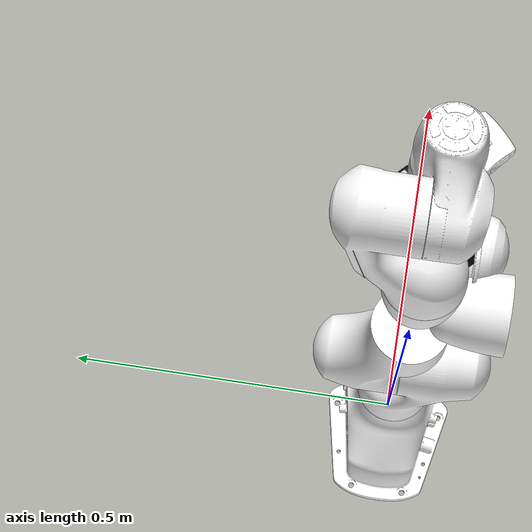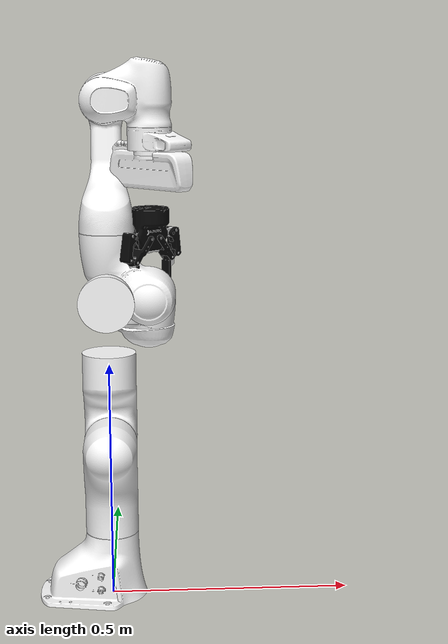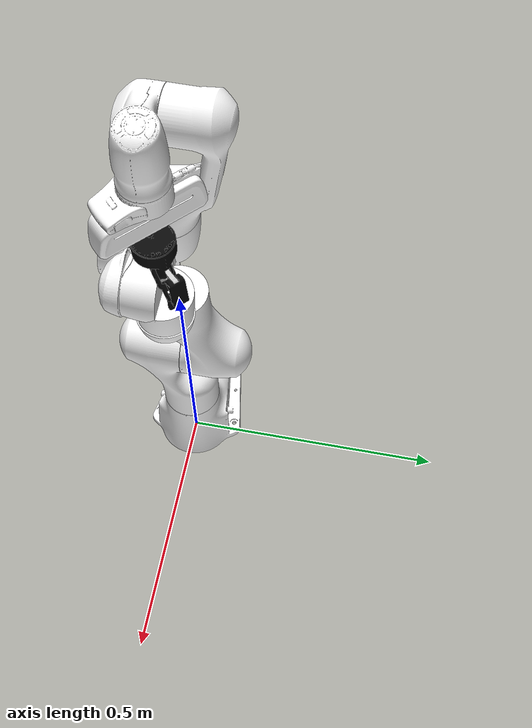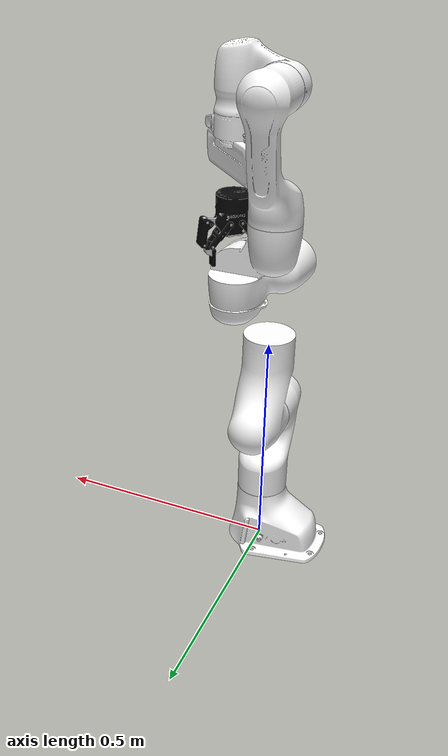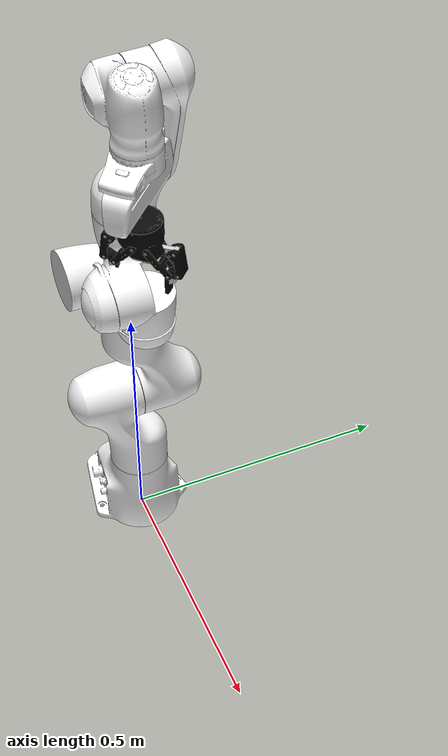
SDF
<?xml version="1.0"?>
<sdf version="1.11">
    <model name="Panda2">
        <!-- Fix To World -->
        <joint name="panda2_joint_world" type="fixed">
            <parent>world</parent>
            <child>panda2_link0</child>
        </joint>
        <!-- Arm Links -->
        <link name="panda2_link0">
            <visual name="panda2_link0_visual">
                <geometry>
                    <mesh>
                        <uri>model://panda/meshes/visual/link0.dae</uri>
                    </mesh>
                </geometry>
                <material>
                    <diffuse>1.0 1.0 1.0</diffuse>
                    <specular>1.0 1.0 1.0</specular>
                    <pbr>
                        <metal>
                            <albedo_map>model://panda/materials/textures/link0_link0_BaseColor.png</albedo_map>
                            <normal_map>model://panda/materials/textures/link0_link0_Normal.png</normal_map>
                            <metalness_map>model://panda/materials/textures/link0_link0_Metallic.png</metalness_map>
                            <roughness_map>model://panda/materials/textures/link0_link0_Roughness.png</roughness_map>
                            <environment_map>https://fuel.ignitionrobotics.org/1.0/openrobotics/models/Reflective table/1/files/materials/textures/DepotEnvMap.dds</environment_map>
                        </metal>
                    </pbr>
                </material>
            </visual>
            <collision name="panda2_link0_collision">
                <geometry>
                    <mesh>
                        <uri>model://panda/meshes/collision/link0.stl</uri>
                    </mesh>
                </geometry>
                <surface>
                    <friction>
                        <ode>
                            <mu>1.05</mu>
                            <mu2>1.05</mu2>
                        </ode>
                    </friction>
                </surface>
            </collision>
            <inertial>
                <pose>-0.025566 -2.87883e-05 0.057332 0 0 0</pose>
                <mass>2.814271300104062</mass>
                <inertia>
                    <ixx>0.0075390636364814695</ixx>
                    <iyy>0.010508017427382959</iyy>
                    <izz>0.009864933638708275</izz>
                    <ixy>-1.5053124574783335e-05</ixy>
                    <ixz>-0.0012144328835738973</ixz>
                    <iyz>1.0434803501032979e-05</iyz>
                </inertia>
            </inertial>
        </link>
        <link name="panda2_link1">
            <pose relative_to="panda2_joint1">0 0 0 0 0 0</pose>
            <visual name="panda2_link1_visual">
                <geometry>
                    <mesh>
                        <uri>model://panda/meshes/visual/link1.dae</uri>
                    </mesh>
                </geometry>
                <material>
                    <diffuse>1.0 1.0 1.0</diffuse>
                    <specular>1.0 1.0 1.0</specular>
                    <pbr>
                        <metal>
                            <albedo_map>model://panda/materials/textures/link1_link1_BaseColor.png</albedo_map>
                            <normal_map>model://panda/materials/textures/link1_link1_Normal.png</normal_map>
                            <roughness_map>model://panda/materials/textures/link1_link1_Roughness.png</roughness_map>
                            <environment_map>https://fuel.ignitionrobotics.org/1.0/openrobotics/models/Reflective table/1/files/materials/textures/DepotEnvMap.dds</environment_map>
                            <metalness>0.1</metalness>
                        </metal>
                    </pbr>
                </material>
            </visual>
            <collision name="panda2_link1_collision">
                <geometry>
                    <mesh>
                        <uri>model://panda/meshes/collision/link1.stl</uri>
                    </mesh>
                </geometry>
                <surface>
                    <friction>
                        <ode>
                            <mu>1.05</mu>
                            <mu2>1.05</mu2>
                        </ode>
                    </friction>
                </surface>
            </collision>
            <inertial>
                <pose>-3.72212e-09 -0.0324958 -0.0675818 0 0 0</pose>
                <mass>2.6433170427227215</mass>
                <inertia>
                    <ixx>0.017405076982879724</ixx>
                    <iyy>0.015352077935781732</iyy>
                    <izz>0.005987891663073857</izz>
                    <ixy>-8.687986369621078e-09</ixy>
                    <ixz>-1.6277819062920423e-08</ixz>
                    <iyz>0.004510855959102245</iyz>
                </inertia>
            </inertial>
        </link>
        <link name="panda2_link2">
            <pose relative_to="panda2_joint2">0 0 0 0 0 0</pose>
            <visual name="panda2_link2_visual">
                <geometry>
                    <mesh>
                        <uri>model://panda/meshes/visual/link2.dae</uri>
                    </mesh>
                </geometry>
                <material>
                    <diffuse>1.0 1.0 1.0</diffuse>
                    <specular>1.0 1.0 1.0</specular>
                    <pbr>
                        <metal>
                            <albedo_map>model://panda/materials/textures/link2_link2_BaseColor.png</albedo_map>
                            <normal_map>model://panda/materials/textures/link2_link2_Normal.png</normal_map>
                            <roughness_map>model://panda/materials/textures/link2_link2_Roughness.png</roughness_map>
                            <environment_map>https://fuel.ignitionrobotics.org/1.0/openrobotics/models/Reflective table/1/files/materials/textures/DepotEnvMap.dds</environment_map>
                            <metalness>0.1</metalness>
                        </metal>
                    </pbr>
                </material>
            </visual>
            <collision name="panda2_link2_collision">
                <geometry>
                    <mesh>
                        <uri>model://panda/meshes/collision/link2.stl</uri>
                    </mesh>
                </geometry>
                <surface>
                    <friction>
                        <ode>
                            <mu>1.05</mu>
                            <mu2>1.05</mu2>
                        </ode>
                    </friction>
                </surface>
            </collision>
            <inertial>
                <pose>3.17833e-07 -0.06861 0.0322285 0 0 0</pose>
                <mass>2.6652755331661186</mass>
                <inertia>
                    <ixx>0.01778694005635383</ixx>
                    <iyy>0.006044133867952844</iyy>
                    <izz>0.01571095500455695</izz>
                    <ixy>8.70635625879119e-08</ixy>
                    <ixz>3.752072058394008e-08</ixz>
                    <iyz>-0.004599490295490376</iyz>
                </inertia>
            </inertial>
        </link>
        <link name="panda2_link3">
            <pose relative_to="panda2_joint3">0 0 0 0 0 0</pose>
            <visual name="panda2_link3_visual">
                <geometry>
                    <mesh>
                        <uri>model://panda/meshes/visual/link3.dae</uri>
                    </mesh>
                </geometry>
                <material>
                    <diffuse>1.0 1.0 1.0</diffuse>
                    <specular>1.0 1.0 1.0</specular>
                    <pbr>
                        <metal>
                            <albedo_map>model://panda/materials/textures/link3_link3_BaseColor.png</albedo_map>
                            <normal_map>model://panda/materials/textures/link3_link3_Normal.png</normal_map>
                            <roughness_map>model://panda/materials/textures/link3_link3_Roughness.png</roughness_map>
                            <environment_map>https://fuel.ignitionrobotics.org/1.0/openrobotics/models/Reflective table/1/files/materials/textures/DepotEnvMap.dds</environment_map>
                            <metalness>0.1</metalness>
                        </metal>
                    </pbr>
                </material>
            </visual>
            <collision name="panda2_link3_collision">
                <geometry>
                    <mesh>
                        <uri>model://panda/meshes/collision/link3.stl</uri>
                    </mesh>
                </geometry>
                <surface>
                    <friction>
                        <ode>
                            <mu>1.05</mu>
                            <mu2>1.05</mu2>
                        </ode>
                    </friction>
                </surface>
            </collision>
            <inertial>
                <pose>0.0469893 0.0316374 -0.031704 0 0 0</pose>
                <mass>2.3293714829045733</mass>
                <inertia>
                    <ixx>0.0075496764161139766</ixx>
                    <iyy>0.009680676080191398</iyy>
                    <izz>0.007944557422008086</izz>
                    <ixy>-0.0024320464513492225</ixy>
                    <ixz>-0.003250815048103007</ixz>
                    <iyz>-0.0021316282421730694</iyz>
                </inertia>
            </inertial>
        </link>
        <link name="panda2_link4">
            <pose relative_to="panda2_joint4">0 0 0 0 0 0</pose>
            <visual name="panda2_link4_visual">
                <geometry>
                    <mesh>
                        <uri>model://panda/meshes/visual/link4.dae</uri>
                    </mesh>
                </geometry>
                <material>
                    <diffuse>1.0 1.0 1.0</diffuse>
                    <specular>1.0 1.0 1.0</specular>
                    <pbr>
                        <metal>
                            <albedo_map>model://panda/materials/textures/link4_link4_BaseColor.png</albedo_map>
                            <normal_map>model://panda/materials/textures/link4_link4_Normal.png</normal_map>
                            <roughness_map>model://panda/materials/textures/link4_link4_Roughness.png</roughness_map>
                            <environment_map>https://fuel.ignitionrobotics.org/1.0/openrobotics/models/Reflective table/1/files/materials/textures/DepotEnvMap.dds</environment_map>
                            <metalness>0.1</metalness>
                        </metal>
                    </pbr>
                </material>
            </visual>
            <collision name="panda2_link4_collision">
                <geometry>
                    <mesh>
                        <uri>model://panda/meshes/collision/link4.stl</uri>
                    </mesh>
                </geometry>
                <surface>
                    <friction>
                        <ode>
                            <mu>1.05</mu>
                            <mu2>1.05</mu2>
                        </ode>
                    </friction>
                </surface>
            </collision>
            <inertial>
                <pose>-0.0360505 0.0337069 0.0319019 0 0 0</pose>
                <mass>2.3104763646281508</mass>
                <inertia>
                    <ixx>0.007764568814864828</ixx>
                    <iyy>0.008015776929980149</iyy>
                    <izz>0.009955882308071066</izz>
                    <ixy>0.003371475204045935</ixy>
                    <ixz>-0.002343621113168248</ixz>
                    <iyz>0.0022917526161470624</iyz>
                </inertia>
            </inertial>
        </link>
        <link name="panda2_link5">
            <pose relative_to="panda2_joint5">0 0 0 0 0 0</pose>
            <visual name="panda2_link5_visual">
                <geometry>
                    <mesh>
                        <uri>model://panda/meshes/visual/link5.dae</uri>
                    </mesh>
                </geometry>
                <material>
                    <diffuse>1.0 1.0 1.0</diffuse>
                    <specular>1.0 1.0 1.0</specular>
                    <pbr>
                        <metal>
                            <albedo_map>model://panda/materials/textures/link5_link5_BaseColor.png</albedo_map>
                            <normal_map>model://panda/materials/textures/link5_link5_Normal.png</normal_map>
                            <roughness_map>model://panda/materials/textures/link5_link5_Roughness.png</roughness_map>
                            <environment_map>https://fuel.ignitionrobotics.org/1.0/openrobotics/models/Reflective table/1/files/materials/textures/DepotEnvMap.dds</environment_map>
                            <metalness>0.1</metalness>
                        </metal>
                    </pbr>
                </material>
            </visual>
            <collision name="panda2_link5_collision">
                <geometry>
                    <mesh>
                        <uri>model://panda/meshes/collision/link5.stl</uri>
                    </mesh>
                </geometry>
                <surface>
                    <friction>
                        <ode>
                            <mu>1.05</mu>
                            <mu2>1.05</mu2>
                        </ode>
                    </friction>
                </surface>
            </collision>
            <inertial>
                <pose>-6.12525e-06 0.0610427 -0.104176 0 0 0</pose>
                <mass>2.6226426154892004</mass>
                <inertia>
                    <ixx>0.029070538014399377</ixx>
                    <iyy>0.027638529986528795</iyy>
                    <izz>0.004251111234400737</izz>
                    <ixy>6.208738268725568e-07</ixy>
                    <ixz>-1.0059151925023392e-05</ixz>
                    <iyz>-0.007424306477850814</iyz>
                </inertia>
            </inertial>
        </link>
        <link name="panda2_link6">
            <pose relative_to="panda2_joint6">0 0 0 0 0 0</pose>
            <visual name="panda2_link6_visual">
                <geometry>
                    <mesh>
                        <uri>model://panda/meshes/visual/link6.dae</uri>
                    </mesh>
                </geometry>
                <material>
                    <diffuse>1.0 1.0 1.0</diffuse>
                    <specular>1.0 1.0 1.0</specular>
                    <pbr>
                        <metal>
                            <albedo_map>model://panda/materials/textures/link6_link6_BaseColor.png</albedo_map>
                            <normal_map>model://panda/materials/textures/link6_link6_Normal.png</normal_map>
                            <roughness_map>model://panda/materials/textures/link6_link6_Roughness.png</roughness_map>
                            <environment_map>https://fuel.ignitionrobotics.org/1.0/openrobotics/models/Reflective table/1/files/materials/textures/DepotEnvMap.dds</environment_map>
                            <metalness>0.1</metalness>
                        </metal>
                    </pbr>
                </material>
            </visual>
            <collision name="panda2_link6_collision">
                <geometry>
                    <mesh>
                        <uri>model://panda/meshes/collision/link6.stl</uri>
                    </mesh>
                </geometry>
                <surface>
                    <friction>
                        <ode>
                            <mu>1.05</mu>
                            <mu2>1.05</mu2>
                        </ode>
                    </friction>
                </surface>
            </collision>
            <inertial>
                <pose>0.051051 0.00910797 0.0106343 0 0 0</pose>
                <mass>1.5025804886626795</mass>
                <inertia>
                    <ixx>0.002940555801469018</ixx>
                    <iyy>0.00392105201248677</iyy>
                    <izz>0.0054115603870960195</izz>
                    <ixy>-0.00042391108351381507</ixy>
                    <ixz>0.000610007735338717</ixz>
                    <iyz>0.00012647545430836214</iyz>
                </inertia>
            </inertial>
        </link>
        <link name="panda2_link7">
            <pose relative_to="panda2_joint7">0 0 0 0 0 0</pose>
            <visual name="panda2_link7_visual">
                <geometry>
                    <mesh>
                        <uri>model://panda/meshes/visual/link7.dae</uri>
                    </mesh>
                </geometry>
                <material>
                    <diffuse>1.0 1.0 1.0</diffuse>
                    <specular>1.0 1.0 1.0</specular>
                    <pbr>
                        <metal>
                            <albedo_map>model://panda/materials/textures/link7_link7_BaseColor.png</albedo_map>
                            <normal_map>model://panda/materials/textures/link7_link7_Normal.png</normal_map>
                            <metalness_map>model://panda/materials/textures/link7_link7_Metallic.png</metalness_map>
                            <roughness_map>model://panda/materials/textures/link7_link7_Roughness.png</roughness_map>
                            <environment_map>https://fuel.ignitionrobotics.org/1.0/openrobotics/models/Reflective table/1/files/materials/textures/DepotEnvMap.dds</environment_map>
                        </metal>
                    </pbr>
                </material>
            </visual>
            <collision name="panda2_link7_collision">
                <geometry>
                    <mesh>
                        <uri>model://panda/meshes/collision/link7.stl</uri>
                    </mesh>
                </geometry>
                <surface>
                    <friction>
                        <ode>
                            <mu>1.05</mu>
                            <mu2>1.05</mu2>
                        </ode>
                    </friction>
                </surface>
            </collision>
            <inertial>
                <pose>0.0109695 0.0107965 0.0650412 0 0 0</pose>
                <mass>0.5237668134788256</mass>
                <inertia>
                    <ixx>0.0008621467959726535</ixx>
                    <iyy>0.0008613100184801048</iyy>
                    <izz>0.0006961139396618219</izz>
                    <ixy>-0.00011871071570425467</ixy>
                    <ixz>3.866602604509339e-05</ixz>
                    <iyz>-9.057841649422724e-05</iyz>
                </inertia>
            </inertial>
        </link>
        <!-- Arm Joints -->
        <joint name="panda2_joint1" type="revolute">
            <pose relative_to="panda2_link0">0 0 0.333 0 0 0</pose>
            <parent>panda2_link0</parent>
            <child>panda2_link1</child>
            <axis>
                <xyz>0 0 1</xyz>
                <limit>
                    <effort>87</effort>
                    <lower>-2.897246558310587</lower>
                    <upper>2.897246558310587</upper>
                    <velocity>2.617993877991494</velocity>
                </limit>
                <dynamics>
                    <spring_reference>0</spring_reference>
                    <spring_stiffness>0</spring_stiffness>
                    <damping>21.75</damping>
                    <friction>3.48</friction>
                </dynamics>
            </axis>
        </joint>
        <joint name="panda2_joint2" type="revolute">
            <pose relative_to="panda2_link1">0 0 0 -1.570796326794897 0 0</pose>
            <parent>panda2_link1</parent>
            <child>panda2_link2</child>
            <axis>
                <xyz>0 0 1</xyz>
                <limit>
                    <effort>87</effort>
                    <lower>-1.762782544514273</lower>
                    <upper>1.762782544514273</upper>
                    <velocity>2.617993877991494</velocity>
                </limit>
                <dynamics>
                    <spring_reference>0</spring_reference>
                    <spring_stiffness>0</spring_stiffness>
                    <damping>21.75</damping>
                    <friction>3.48</friction>
                </dynamics>
            </axis>
        </joint>
        <joint name="panda2_joint3" type="revolute">
            <pose relative_to="panda2_link2">0 -0.316 0 1.570796326794897 0 0</pose>
            <parent>panda2_link2</parent>
            <child>panda2_link3</child>
            <axis>
                <xyz>0 0 1</xyz>
                <limit>
                    <effort>87</effort>
                    <lower>-2.897246558310587</lower>
                    <upper>2.897246558310587</upper>
                    <velocity>2.617993877991494</velocity>
                </limit>
                <dynamics>
                    <spring_reference>0</spring_reference>
                    <spring_stiffness>0</spring_stiffness>
                    <damping>21.75</damping>
                    <friction>3.48</friction>
                </dynamics>
            </axis>
        </joint>
        <joint name="panda2_joint4" type="revolute">
            <pose relative_to="panda2_link3">0.0825 0 0 1.570796326794897 0 0</pose>
            <parent>panda2_link3</parent>
            <child>panda2_link4</child>
            <axis>
                <xyz>0 0 1</xyz>
                <limit>
                    <effort>87</effort>
                    <lower>-3.07177948351002</lower>
                    <upper>-0.06981317007977318</upper>
                    <velocity>2.617993877991494</velocity>
                </limit>
                <dynamics>
                    <spring_reference>0</spring_reference>
                    <spring_stiffness>0</spring_stiffness>
                    <damping>21.75</damping>
                    <friction>3.48</friction>
                </dynamics>
            </axis>
        </joint>
        <joint name="panda2_joint5" type="revolute">
            <pose relative_to="panda2_link4">-0.0825 0.384 0 -1.570796326794897 0 0</pose>
            <parent>panda2_link4</parent>
            <child>panda2_link5</child>
            <axis>
                <xyz>0 0 1</xyz>
                <limit>
                    <effort>12</effort>
                    <lower>-2.897246558310587</lower>
                    <upper>2.897246558310587</upper>
                    <velocity>3.141592653589793</velocity>
                </limit>
                <dynamics>
                    <spring_reference>0</spring_reference>
                    <spring_stiffness>0</spring_stiffness>
                    <damping>3.0</damping>
                    <friction>0.48</friction>
                </dynamics>
            </axis>
        </joint>
        <joint name="panda2_joint6" type="revolute">
            <pose relative_to="panda2_link5">0 0 0 1.570796326794897 0 0</pose>
            <parent>panda2_link5</parent>
            <child>panda2_link6</child>
            <axis>
                <xyz>0 0 1</xyz>
                <limit>
                    <effort>12</effort>
                    <lower>-0.0174532925199433</lower>
                    <upper>3.752457891787809</upper>
                    <velocity>3.141592653589793</velocity>
                </limit>
                <dynamics>
                    <spring_reference>0</spring_reference>
                    <spring_stiffness>0</spring_stiffness>
                    <damping>3.0</damping>
                    <friction>0.48</friction>
                </dynamics>
            </axis>
        </joint>
        <joint name="panda2_joint7" type="revolute">
            <pose relative_to="panda2_link6">0.088 0 0 1.570796326794897 0 0</pose>
            <parent>panda2_link6</parent>
            <child>panda2_link7</child>
            <axis>
                <xyz>0 0 1</xyz>
                <limit>
                    <effort>12</effort>
                    <lower>-2.897246558310587</lower>
                    <upper>2.897246558310587</upper>
                    <velocity>3.141592653589793</velocity>
                </limit>
                <dynamics>
                    <spring_reference>0</spring_reference>
                    <spring_stiffness>0</spring_stiffness>
                    <damping>3.0</damping>
                    <friction>0.48</friction>
                </dynamics>
            </axis>
        </joint>
        <!-- Arm-Hand Fixed Joint -->
        <joint name="panda2_hand_joint" type="fixed">
            <pose relative_to="panda2_link7">0 0 0.107 0 0 -0.7853981633974483</pose>
            <parent>panda2_link7</parent>
            <child>panda2_hand</child>
        </joint>
        <!-- Hand Links -->
        <link name="panda2_hand">
            <pose relative_to="panda2_hand_joint">0 0 0 0 0 0</pose>
            <visual name="panda2_hand_visual">
                <pose>0 0 0 0 0 0</pose>
                <geometry>
                    <mesh>
                        <uri>model://panda/meshes/visual/hand.dae</uri>
                    </mesh>
                </geometry>
                <material>
                    <diffuse>1.0 1.0 1.0</diffuse>
                    <specular>1.0 1.0 1.0</specular>
                    <pbr>
                        <metal>
                            <albedo_map>model://panda/materials/textures/hand_hand_BaseColor.png</albedo_map>
                            <normal_map>model://panda/materials/textures/hand_hand_Normal.png</normal_map>
                            <roughness_map>model://panda/materials/textures/hand_hand_Roughness.png</roughness_map>
                            <environment_map>https://fuel.ignitionrobotics.org/1.0/openrobotics/models/Reflective table/1/files/materials/textures/DepotEnvMap.dds</environment_map>
                            <metalness>0.1</metalness>
                        </metal>
                    </pbr>
                </material>
            </visual>
            <collision name="panda2_hand_collision">
                <pose>0 0 0 0 0 0</pose>
                <geometry>
                    <mesh>
                        <uri>model://panda/meshes/collision/hand.stl</uri>
                    </mesh>
                </geometry>
                <surface>
                    <friction>
                        <ode>
                            <mu>1.05</mu>
                            <mu2>1.05</mu2>
                        </ode>
                    </friction>
                </surface>
            </collision>
            <inertial>
                <pose>-6.7624e-06 0.00152435 0.0275912 0 0 0</pose>
                <mass>0.14060765127978503</mass>
                <inertia>
                    <ixx>0.0005365450414352072</ixx>
                    <iyy>7.70511954783727e-05</iyy>
                    <izz>0.0004938176882694914</izz>
                    <ixy>1.7911952957732454e-08</ixy>
                    <ixz>-2.320071910601251e-08</ixz>
                    <iyz>4.681149945315967e-08</iyz>
                </inertia>
            </inertial>
        </link>
        <!-- Robotiq 2F-85 Gripper Links -->
        <link name="robotiq2_85_base_link">
            <pose relative_to="robotiq2_85_base_joint">0 0 0 0 0 0</pose>
            <inertial>
                <pose>0.0 2.274e-05 0.03232288 0 0 0</pose>
                <mass>0.6632</mass>
                <inertia>
                    <ixx>5.1617816e-04</ixx><iyy>5.8802208e-04</iyy><izz>3.9462776e-04</izz>
                    <ixy>2.936e-8</ixy><ixz>0.0</ixz><iyz>-3.2296e-7</iyz>
                </inertia>
            </inertial>
            <visual name="robotiq2_85_base_link_visual">
                <geometry>
                    <mesh><uri>file:///opt/ros/jazzy/share/robotiq_description/meshes/visual/robotiq_base.dae</uri></mesh>
                </geometry>
            </visual>
            <collision name="robotiq2_85_base_link_collision">
                <geometry>
                    <mesh><uri>file:///opt/ros/jazzy/share/robotiq_description/meshes/collision/robotiq_base.stl</uri></mesh>
                </geometry>
            </collision>
        </link>

        <link name="robotiq2_85_left_knuckle_link">
            <pose relative_to="robotiq2_85_left_knuckle_joint">0 0 0 0 0 0</pose>
            <inertial>
                <pose>0.01213197 0.0002 -0.00058647 0 0 0</pose>
                <mass>0.01384773208</mass>
                <inertia>
                    <ixx>3.5232e-7</ixx><iyy>2.31944e-6</iyy><izz>2.23136e-6</izz>
                    <ixy>0.0</ixy><ixz>1.1744e-7</ixz><iyz>0.0</iyz>
                </inertia>
            </inertial>
            <visual name="visual">
                <geometry>
                    <mesh><uri>file:///opt/ros/jazzy/share/robotiq_description/meshes/visual/left_knuckle.dae</uri></mesh>
                </geometry>
            </visual>
            <collision name="collision">
                <geometry>
                    <mesh><uri>file:///opt/ros/jazzy/share/robotiq_description/meshes/collision/left_knuckle.stl</uri></mesh>
                </geometry>
            </collision>
        </link>

        <link name="robotiq2_85_right_knuckle_link">
            <pose relative_to="robotiq2_85_right_knuckle_joint">0 0 0 0 0 0</pose>
            <inertial>
                <pose>-0.01213197 0.0002 -0.00058647 0 0 0</pose>
                <mass>0.01384773208</mass>
                <inertia>
                    <ixx>3.5232e-7</ixx><iyy>2.31944e-6</iyy><izz>2.23136e-6</izz>
                    <ixy>0.0</ixy><ixz>-1.1744e-7</ixz><iyz>0.0</iyz>
                </inertia>
            </inertial>
            <visual name="visual">
                <geometry>
                    <mesh><uri>file:///opt/ros/jazzy/share/robotiq_description/meshes/visual/right_knuckle.dae</uri></mesh>
                </geometry>
            </visual>
            <collision name="collision">
                <geometry>
                    <mesh><uri>file:///opt/ros/jazzy/share/robotiq_description/meshes/collision/right_knuckle.stl</uri></mesh>
                </geometry>
            </collision>
        </link>

        <link name="robotiq2_85_left_finger_link">
            <pose relative_to="robotiq2_85_left_finger_joint">0 0 0 0 0 0</pose>
            <inertial>
                <pose>0.00346899 -0.00079447 0.01867121 0 0 0</pose>
                <mass>0.04260376752</mass>
                <inertia>
                    <ixx>1.385792e-05</ixx><iyy>1.183208e-05</iyy><izz>5.19672e-06</izz>
                    <ixy>0.0</ixy><ixz>-2.17264e-06</ixz><iyz>0.0</iyz>
                </inertia>
            </inertial>
            <visual name="visual">
                <geometry>
                    <mesh><uri>file:///opt/ros/jazzy/share/robotiq_description/meshes/visual/left_finger.dae</uri></mesh>
                </geometry>
            </visual>
            <collision name="collision">
                <geometry>
                    <mesh><uri>file:///opt/ros/jazzy/share/robotiq_description/meshes/collision/left_finger.stl</uri></mesh>
                </geometry>
            </collision>
        </link>

        <link name="robotiq2_85_right_finger_link">
            <pose relative_to="robotiq2_85_right_finger_joint">0 0 0 0 0 0</pose>
            <inertial>
                <pose>-0.00346899 -5.53e-06 0.01867121 0 0 0</pose>
                <mass>0.04260376752</mass>
                <inertia>
                    <ixx>1.385792e-05</ixx><iyy>1.183208e-05</iyy><izz>5.19672e-06</izz>
                    <ixy>0.0</ixy><ixz>2.17264e-06</ixz><iyz>0.0</iyz>
                </inertia>
            </inertial>
            <visual name="visual">
                <geometry>
                    <mesh><uri>file:///opt/ros/jazzy/share/robotiq_description/meshes/visual/right_finger.dae</uri></mesh>
                </geometry>
            </visual>
            <collision name="collision">
                <geometry>
                    <mesh><uri>file:///opt/ros/jazzy/share/robotiq_description/meshes/collision/right_finger.stl</uri></mesh>
                </geometry>
            </collision>
        </link>

        <link name="robotiq2_85_left_inner_knuckle_link">
            <pose relative_to="robotiq2_85_left_inner_knuckle_joint">0 0 0 0 0 0</pose>
            <inertial>
                <pose>0.01897699 0.00015001 0.02247101 0 0 0</pose>
                <mass>0.02969376448</mass>
                <inertia>
                    <ixx>9.57136e-06</ixx><iyy>8.69056e-06</iyy><izz>8.19144e-06</izz>
                    <ixy>0.0</ixy><ixz>-3.93424e-06</ixz><iyz>0.0</iyz>
                </inertia>
            </inertial>
            <visual name="visual">
                <geometry>
                    <mesh><uri>file:///opt/ros/jazzy/share/robotiq_description/meshes/visual/left_inner_knuckle.dae</uri></mesh>
                </geometry>
            </visual>
            <collision name="collision">
                <geometry>
                    <mesh><uri>file:///opt/ros/jazzy/share/robotiq_description/meshes/collision/left_inner_knuckle.stl</uri></mesh>
                </geometry>
            </collision>
        </link>

        <link name="robotiq2_85_right_inner_knuckle_link">
            <pose relative_to="robotiq2_85_right_inner_knuckle_joint">0 0 0 0 0 0</pose>
            <inertial>
                <pose>-0.01926824 5.001e-05 0.02222178 0 0 0</pose>
                <mass>0.02969376448</mass>
                <inertia>
                    <ixx>9.42456e-06</ixx><iyy>8.69056e-06</iyy><izz>8.33824e-06</izz>
                    <ixy>0.0</ixy><ixz>3.9636e-06</ixz><iyz>0.0</iyz>
                </inertia>
            </inertial>
            <visual name="visual">
                <geometry>
                    <mesh><uri>file:///opt/ros/jazzy/share/robotiq_description/meshes/visual/right_inner_knuckle.dae</uri></mesh>
                </geometry>
            </visual>
            <collision name="collision">
                <geometry>
                    <mesh><uri>file:///opt/ros/jazzy/share/robotiq_description/meshes/collision/right_inner_knuckle.stl</uri></mesh>
                </geometry>
            </collision>
        </link>

        <link name="robotiq2_85_left_finger_tip_link">
            <pose relative_to="robotiq2_85_left_finger_tip_joint">0 0 0 0 0 0</pose>
            <inertial>
                <pose>-0.01456706 -0.0008 0.01649701 0 0 0</pose>
                <mass>0.04268588744</mass>
                <inertia>
                    <ixx>1.048152e-05</ixx><iyy>1.197888e-05</iyy><izz>4.22784e-06</izz>
                    <ixy>0.0</ixy><ixz>3.5232e-6</ixz><iyz>0.0</iyz>
                </inertia>
            </inertial>
            <visual name="visual">
                <geometry>
                    <mesh><uri>file:///opt/ros/jazzy/share/robotiq_description/meshes/visual/left_finger_tip.dae</uri></mesh>
                </geometry>
            </visual>
            <collision name="collision">
                <geometry>
                    <mesh><uri>file:///opt/ros/jazzy/share/robotiq_description/meshes/collision/left_finger_tip.stl</uri></mesh>
                </geometry>
            </collision>
        </link>

        <link name="robotiq2_85_right_finger_tip_link">
            <pose relative_to="robotiq2_85_right_finger_tip_joint">0 0 0 0 0 0</pose>
            <inertial>
                <pose>0.01456706 5e-05 0.01649701 0 0 0</pose>
                <mass>0.04268588744</mass>
                <inertia>
                    <ixx>1.048152e-05</ixx><iyy>1.197888e-05</iyy><izz>4.22784e-06</izz>
                    <ixy>0.0</ixy><ixz>-3.5232e-06</ixz><iyz>0.0</iyz>
                </inertia>
            </inertial>
            <visual name="visual">
                <geometry>
                    <mesh><uri>file:///opt/ros/jazzy/share/robotiq_description/meshes/visual/right_finger_tip.dae</uri></mesh>
                </geometry>
            </visual>
            <collision name="collision">
                <geometry>
                    <mesh><uri>file:///opt/ros/jazzy/share/robotiq_description/meshes/collision/right_finger_tip.stl</uri></mesh>
                </geometry>
            </collision>
        </link>

        <!-- Robotiq 2F-85 Gripper Joints -->
        <joint name="robotiq2_85_base_joint" type="fixed">
            <pose relative_to="panda2_link8">0 0 0 0 0 0</pose>
            <parent>panda2_link8</parent>
            <child>robotiq2_85_base_link</child>
        </joint>

        <joint name="robotiq2_85_left_knuckle_joint" type="revolute">
            <pose relative_to="robotiq2_85_base_link">0.03060114 0.0 0.05490452 0 0 0</pose>
            <parent>robotiq2_85_base_link</parent>
            <child>robotiq2_85_left_knuckle_link</child>
            <axis>
                <xyz>0 -1 0</xyz>
                <limit><lower>0.0</lower><upper>0.8</upper><effort>50</effort><velocity>0.5</velocity></limit>
            </axis>
        </joint>

        <joint name="robotiq2_85_right_knuckle_joint" type="revolute">
            <pose relative_to="robotiq2_85_base_link">-0.03060114 0.0 0.05490452 0 0 0</pose>
            <parent>robotiq2_85_base_link</parent>
            <child>robotiq2_85_right_knuckle_link</child>
            <axis>
                <xyz>0 -1 0</xyz>
                <limit><lower>-0.8</lower><upper>0.0</upper><effort>50</effort><velocity>0.5</velocity></limit>
                <mimic joint="robotiq2_85_left_knuckle_joint">
                    <multiplier>-1</multiplier>
                    <offset>0</offset>
                    <reference>0</reference>
                </mimic>
            </axis>
        </joint>

        <joint name="robotiq2_85_left_finger_joint" type="fixed">
            <pose relative_to="robotiq2_85_left_knuckle_link">0.03152616 0.0 -0.00376347 0 0 0</pose>
            <parent>robotiq2_85_left_knuckle_link</parent>
            <child>robotiq2_85_left_finger_link</child>
        </joint>

        <joint name="robotiq2_85_right_finger_joint" type="fixed">
            <pose relative_to="robotiq2_85_right_knuckle_link">-0.03152616 0.0 -0.00376347 0 0 0</pose>
            <parent>robotiq2_85_right_knuckle_link</parent>
            <child>robotiq2_85_right_finger_link</child>
        </joint>

        <joint name="robotiq2_85_left_inner_knuckle_joint" type="revolute">
            <pose relative_to="robotiq2_85_base_link">0.0127 0.0 0.06142 0 0 0</pose>
            <parent>robotiq2_85_base_link</parent>
            <child>robotiq2_85_left_inner_knuckle_link</child>
            <axis>
                <xyz>0 -1 0</xyz>
                <limit><lower>0.0</lower><upper>0.8</upper><effort>50</effort><velocity>0.5</velocity></limit>
                <mimic joint="robotiq2_85_left_knuckle_joint">
                    <multiplier>1</multiplier>
                    <offset>0</offset>
                    <reference>0</reference>
                </mimic>
            </axis>
        </joint>

        <joint name="robotiq2_85_right_inner_knuckle_joint" type="revolute">
            <pose relative_to="robotiq2_85_base_link">-0.0127 0.0 0.06142 0 0 0</pose>
            <parent>robotiq2_85_base_link</parent>
            <child>robotiq2_85_right_inner_knuckle_link</child>
            <axis>
                <xyz>0 -1 0</xyz>
                <limit><lower>-0.8</lower><upper>0.0</upper><effort>50</effort><velocity>0.5</velocity></limit>
                <mimic joint="robotiq2_85_left_knuckle_joint">
                    <multiplier>-1</multiplier>
                    <offset>0</offset>
                    <reference>0</reference>
                </mimic>
            </axis>
        </joint>

        <joint name="robotiq2_85_left_finger_tip_joint" type="revolute">
            <pose relative_to="robotiq2_85_left_finger_link">0.00563134 0.0 0.04718515 0 0 0</pose>
            <parent>robotiq2_85_left_finger_link</parent>
            <child>robotiq2_85_left_finger_tip_link</child>
            <axis>
                <xyz>0 -1 0</xyz>
                <limit><lower>-0.8</lower><upper>0.0</upper><effort>50</effort><velocity>0.5</velocity></limit>
                <mimic joint="robotiq2_85_left_knuckle_joint">
                    <multiplier>-1</multiplier>
                    <offset>0</offset>
                    <reference>0</reference>
                </mimic>
            </axis>
        </joint>

        <joint name="robotiq2_85_right_finger_tip_joint" type="revolute">
            <pose relative_to="robotiq2_85_right_finger_link">-0.00563134 0.0 0.04718515 0 0 0</pose>
            <parent>robotiq2_85_right_finger_link</parent>
            <child>robotiq2_85_right_finger_tip_link</child>
            <axis>
                <xyz>0 -1 0</xyz>
                <limit><lower>0.0</lower><upper>0.8</upper><effort>50</effort><velocity>0.5</velocity></limit>
                <mimic joint="robotiq2_85_left_knuckle_joint">
                    <multiplier>1</multiplier>
                    <offset>0</offset>
                    <reference>0</reference>
                </mimic>
            </axis>
        </joint>
        <!-- End-effector -->
        <link name="panda2_link8">
            <pose relative_to="panda2_end_effector_frame_fixed_joint">0 0 0 0 0 0</pose>
        </link>
        <joint name="panda2_end_effector_frame_fixed_joint" type="fixed">
            <pose relative_to="panda2_hand">0 0 0.103 0 0 0</pose>
            <parent>panda2_hand</parent>
            <child>panda2_link8</child>
        </joint>
        <ros2_control name="GazeboSimSystem2" type="system">
            <hardware>
                <plugin>gz_ros2_control/GazeboSimSystem</plugin>
            </hardware>
            <joint name="panda2_joint1">
                <command_interface name="position">
                    <param name="min">-2.897246558310587</param>
                    <param name="max">2.897246558310587</param>
                </command_interface>
                <state_interface name="position"/>
                <state_interface name="velocity"/>
            </joint>
            <joint name="panda2_joint2">
                <command_interface name="position">
                    <param name="min">-1.762782544514273</param>
                    <param name="max">1.762782544514273</param>
                </command_interface>
                <state_interface name="position"/>
                <state_interface name="velocity"/>
            </joint>
            <joint name="panda2_joint3">
                <command_interface name="position">
                    <param name="min">-2.897246558310587</param>
                    <param name="max">2.897246558310587</param>
                </command_interface>
                <state_interface name="position"/>
                <state_interface name="velocity"/>
            </joint>
            <joint name="panda2_joint4">
                <command_interface name="position">
                    <param name="min">-3.07177948351002</param>
                    <param name="max">-0.06981317007977318</param>
                </command_interface>
                <state_interface name="position"/>
                <state_interface name="velocity"/>
            </joint>
            <joint name="panda2_joint5">
                <command_interface name="position">
                    <param name="min">-2.897246558310587</param>
                    <param name="max">2.897246558310587</param>
                </command_interface>
                <state_interface name="position"/>
                <state_interface name="velocity"/>
            </joint>
            <joint name="panda2_joint6">
                <command_interface name="position">
                    <param name="min">-0.0174532925199433</param>
                    <param name="max">3.752457891787809</param>
                </command_interface>
                <state_interface name="position"/>
                <state_interface name="velocity"/>
            </joint>
            <joint name="panda2_joint7">
                <command_interface name="position">
                    <param name="min">-2.897246558310587</param>
                    <param name="max">2.897246558310587</param>
                </command_interface>
                <state_interface name="position"/>
                <state_interface name="velocity"/>
            </joint>

            <joint name="robotiq2_85_left_knuckle_joint">
                <command_interface name="position">
                    <param name="position_proportional_gain">20</param>
                </command_interface>
                <state_interface name="position">
                    <param name="initial_value">0.0</param>
                </state_interface>
                <state_interface name="velocity"/>
            </joint>
        </ros2_control>

        <plugin filename="gz_ros2_control-system" name="gz_ros2_control::GazeboSimROS2ControlPlugin">
            <ros>
                <namespace>panda2</namespace>
            </ros>
            <parameters>__PANDA2_ROS2_CONTROLLERS_YAML__</parameters>
        </plugin>
    </model>
</sdf>
